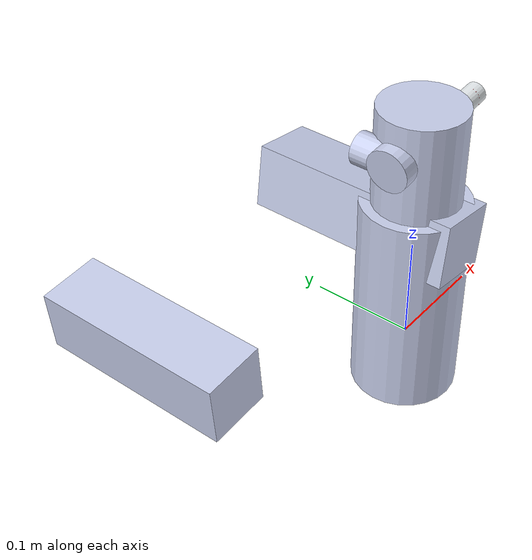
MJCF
<?xml version="1.0" ?>
<mujoco model="piper">
  <compiler angle="radian" />
  <size njmax="500" nconmax="100" />

  <worldbody>
    <body name="dummy_link" pos="0 0 0">
      <body name="base_link" pos="0.0 0.0 0.0">
        <!-- Precise inertial properties from verified model -->
        <inertial pos="-0.00473641164191482 2.56829134630247e-05 0.041451518036016"
                  mass="1.02"
                  diaginertia="0.00267433 0.00282612 0.00089624" />
        <!-- Simplified geometry for visualization (no mesh dependency) -->
        <geom type="cylinder" size="0.05 0.1" pos="0 0 0.05"
              rgba="0.792156862745098 0.819607843137255 0.933333333333333 1"
              contype="0"/>

        <body name="link1" pos="0.0 0.0 0.123">
          <!-- Precise inertial from verified model -->
          <inertial pos="0.000121504734057468 0.000104632162460536 -0.00438597309559853"
                    mass="0.71"
                    diaginertia="0.00048916 0.00040472 0.00043982" />
          <joint name="joint1" pos="0 0 0" axis="0.0 0.0 1.0" limited="true"
                 range="-2.618 2.168" damping="5" />
          <geom type="cylinder" size="0.04 0.08" pos="0 0 0.04"
                rgba="0.792156862745098 0.819607843137255 0.933333333333333 1"
                contype="0"/>

          <body name="link2" pos="0.0 0.0 0.0" quat="0.048008436658572406 -0.04801344301314855 -0.7054761009125181 -0.7054738622662738">
            <!-- Precise inertial from verified model -->
            <inertial pos="0.198666145229743 -0.010926924140076 0.00142121714502687"
                      mass="1.17"
                      diaginertia="0.00116918 0.06785384 0.06774489" />
            <joint name="joint2" pos="0 0 0" axis="0.0 0.0 1.0" limited="true"
                   range="0.0 3.14" damping="5" />
            <geom type="box" size="0.03 0.03 0.1" pos="0 0 0.05"
                  rgba="0.792156862745098 0.819607843137255 0.933333333333333 1"
                  contype="0"/>

            <body name="link3" pos="0.28503 0.0 0.0" quat="0.6239962203797329 0.0 0.0 -0.7814273587172437">
              <!-- Precise inertial from verified model -->
              <inertial pos="-0.0202737662122021 -0.133914995944595 -0.000458682652737356"
                        mass="0.5"
                        diaginertia="0.01361711 0.00045024 0.01380322" />
              <joint name="joint3" pos="0 0 0" axis="0.0 0.0 1.0" limited="true"
                     range="-2.967 0.0" damping="5" />
              <!-- NOTE: No contype in verified model - allows collision -->
              <geom type="box" size="0.025 0.025 0.08" pos="0 0 0.04"
                    rgba="0.792156862745098 0.819607843137255 0.933333333333333 1" />

              <body name="link4" pos="-0.021984 -0.25075 0.0" quat="0.7071054825112363 0.7071080798594735 0.0 0.0">
                <!-- Precise inertial from verified model -->
                <inertial pos="-9.66635791618542e-05 0.000876064475651083 -0.00496880904640868"
                          mass="0.38"
                          diaginertia="0.00018501 0.00018965 0.00015484" />
                <joint name="joint4" pos="0 0 0" axis="0.0 0.0 1.0" limited="true"
                       range="-1.745 1.745" damping="5" />
                <!-- NOTE: No contype in verified model - allows collision -->
                <geom type="cylinder" size="0.02 0.03" pos="0 0 0.015"
                      rgba="0.792156862745098 0.819607843137255 0.933333333333333 1" />

                <body name="link5" pos="0.0 0.0 0.0" quat="0.7071054825112363 -0.7071080798594735 0.0 0.0">
                  <!-- Precise inertial from verified model -->
                  <inertial pos="-4.10554118924211e-05 -0.0566486692356075 -0.0037205791677906"
                            mass="0.383"
                            diaginertia="0.00166169 0.0001851 0.00164321" />
                  <joint name="joint5" pos="0 0 0" axis="0.0 0.0 1.0" limited="true"
                         range="-1.22 1.22" damping="5" />
                  <!-- NOTE: No contype in verified model - allows collision -->
                  <geom type="cylinder" size="0.015 0.025" pos="0 0 0.0125"
                        rgba="0.792156862745098 0.819607843137255 0.933333333333333 1" />

                  <body name="link6" pos="8.8259e-05 -0.091 0.0" quat="0.7071054825112363 0.7071080798594735 0.0 0.0">
                    <!-- Precise inertial from verified model -->
                    <inertial pos="-8.82590762930069e-05 9.0598378529832e-06 -0.002"
                              mass="0.007"
                              diaginertia="5.73015540542155e-07 5.73015540542155e-07 1.06738869138926e-06" />
                    <joint name="joint6" pos="0 0 0" axis="0.0 0.0 1.0" limited="true"
                           range="-2.0944 2.0944" damping="5" />
                    <!-- NOTE: No contype in verified model - allows collision -->
                    <geom type="cylinder" size="0.01 0.02" pos="0 0 0.01"
                          rgba="0.898039215686275 0.917647058823529 0.929411764705882 1" />

                    <!-- End effector site -->
                    <site name="end_effector" pos="0 0 0.02" size="0.01" rgba="1 0 0 1"/>
                  </body>
                </body>
              </body>
            </body>
          </body>
        </body>
      </body>
    </body>
  </worldbody>

  <actuator>
    <!-- Precise actuator limits from verified model -->
    <motor name="joint1" joint="joint1" ctrlrange="-90.0 90.0" />
    <motor name="joint2" joint="joint2" ctrlrange="-20.0 20.0" />
    <motor name="joint3" joint="joint3" ctrlrange="-20.0 20.0" />
    <motor name="joint4" joint="joint4" ctrlrange="-10.0 10.0" />
    <motor name="joint5" joint="joint5" ctrlrange="-10.0 10.0" />
    <motor name="joint6" joint="joint6" ctrlrange="-10.0 10.0" />
  </actuator>
</mujoco>
